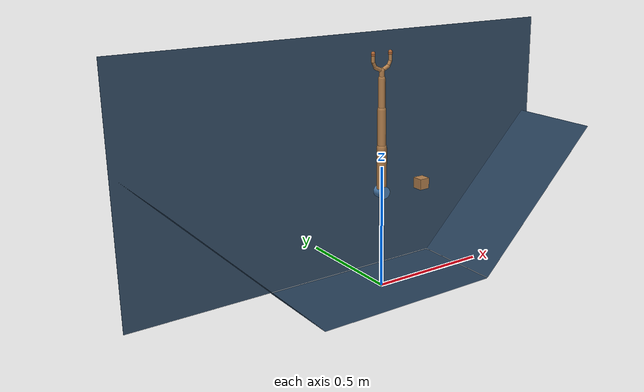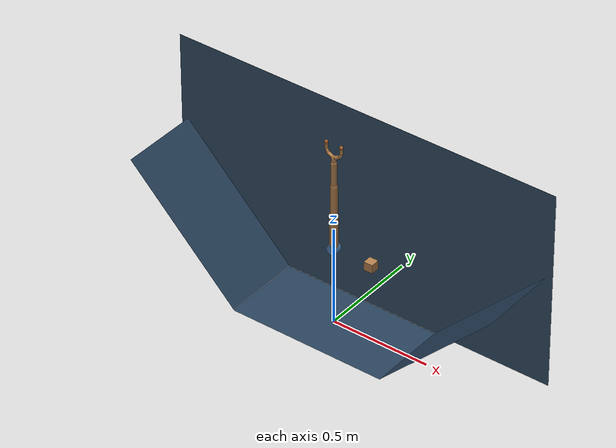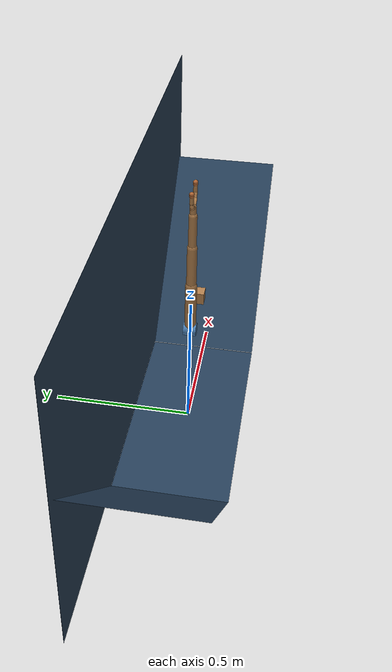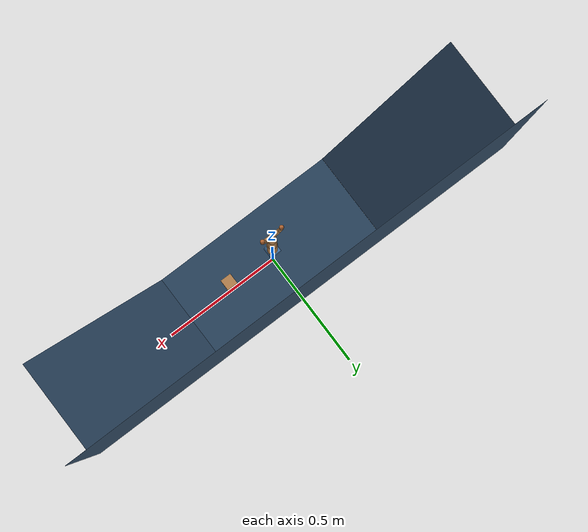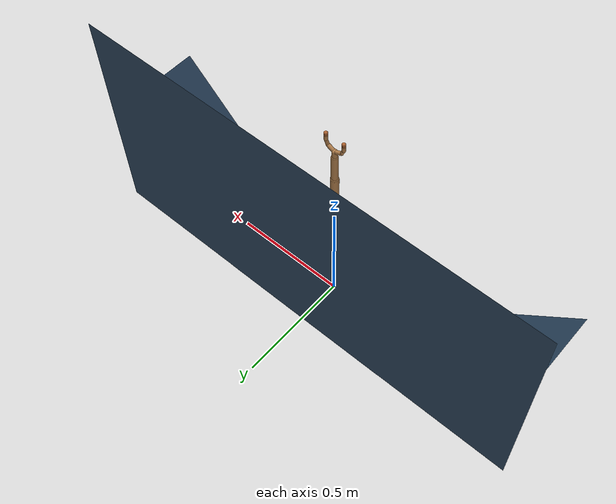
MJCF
<mujoco model="planar stacker">

  <include file="./common/visual.xml"/>
  <include file="./common/skybox.xml"/>
  <include file="./common/materials.xml"/>
  <asset>
    <texture name="background" builtin="flat" type="2d" mark="random" markrgb="1 1 1" width="800" height="800" rgb1=".2 .3 .4"/>
    <material name="background" texture="background" texrepeat="1 1" texuniform="true"/>
  </asset>

  <visual>
    <map shadowclip=".5"/>
    <quality shadowsize="2048"/>
  </visual>>

  <option timestep="0.001" cone="elliptic"/>

  <default>
    <geom friction=".7" solimp="0.9 0.97 0.001" solref=".01 1"/>
    <joint solimplimit="0 0.99 0.01" solreflimit=".005 1"/>
    <general ctrllimited="true"/>
    <tendon width="0.01"/>
    <site size=".003 .003 .003" rgba=".5 .5 .5 .3" group="3"/>

    <default class="arm">
      <geom type="capsule" material="self" density="500"/>
      <joint type="hinge" pos="0 0 0" axis="0 -1 0" limited="true"/>
      <default class="hand">
        <joint damping=".5" range="-10 60"/>
        <geom size=".008"/>
        <site  type="box" size=".018 .005 .005" pos=".022 0 -.002" euler="0 15 0" group="4"/>
        <default class="fingertip">
          <geom type="sphere" size=".008" material="effector"/>
          <joint damping=".01" stiffness=".01" range="-40 20"/>
          <site  size=".012 .005 .008" pos=".003 0 .003" group="4" euler="0 0 0"/>
        </default>
      </default>
    </default>

    <default class="object">
      <geom material="self"/>
    </default>

    <default class="task">
      <site rgba="0 0 0 0"/>
    </default>

    <default class="obstacle">
      <geom material="decoration" friction="0"/>
    </default>

    <default class="ghost">
      <geom material="target" contype="0" conaffinity="0"/>
    </default>
  </default>

  <worldbody>
    <!-- Arena -->
    <light name="light" directional="true" diffuse=".6 .6 .6" pos="0 0 1" specular=".3 .3 .3"/>
    <geom name="floor" type="plane" pos="0 0 0" size=".4 .2 10" material="grid"/>
    <geom name="wall1" type="plane" pos="-.682843 0 .282843" size=".4 .2 10" material="grid" zaxis="1 0 1"/>
    <geom name="wall2" type="plane" pos=".682843 0 .282843" size=".4 .2 10" material="grid" zaxis="-1 0 1"/>
    <geom name="background" type="plane" pos="0 .2 .5" size="1 .5 10" material="background" zaxis="0 -1 0"/>
    <camera name="fixed" pos="0 -16 .4" xyaxes="1 0 0 0 0 1" fovy="4"/>

    <!-- Arm -->
    <geom name="arm_root" type="cylinder" fromto="0 -.022 .4 0 .022 .4" size=".024"
          material="decoration" contype="0" conaffinity="0"/>
    <body name="upper_arm" pos="0 0 .4" childclass="arm">
      <joint name="arm_root" damping="2" limited="false"/>
      <geom  name="upper_arm"  size=".02" fromto="0 0 0 0 0 .18"/>
      <body  name="middle_arm" pos="0 0 .18" childclass="arm">
        <joint name="arm_shoulder" damping="1.5" range="-160 160"/>
        <geom  name="middle_arm"  size=".017" fromto="0 0 0 0 0 .15"/>
        <body  name="lower_arm" pos="0 0 .15">
          <joint name="arm_elbow" damping="1" range="-160 160"/>
          <geom  name="lower_arm" size=".014" fromto="0 0 0 0 0 .12"/>
          <body  name="hand" pos="0 0 .12">
            <joint name="arm_wrist" damping=".5" range="-140 140" />
            <geom  name="hand" size=".011" fromto="0 0 0 0 0 .03"/>
            <geom  name="palm1"  fromto="0 0 .03  .03 0 .045" class="hand"/>
            <geom  name="palm2"  fromto="0 0 .03 -.03 0 .045" class="hand"/>
            <site  name="grasp" pos="0 0 .065"/>
            <body  name="pinch site" pos="0 0 .090">
              <site  name="pinch"/>
              <inertial pos="0 0 0" mass="1e-6" diaginertia="1e-12 1e-12 1e-12"/>
              <camera name="hand" pos="0 -.3 0" xyaxes="1 0 0 0 0 1" mode="track"/>
            </body>
            <site  name="palm_touch" type="box" group="4" size=".025 .005 .008" pos="0 0 .043"/>

            <body name="thumb" pos=".03 0 .045" euler="0 -90 0" childclass="hand">
              <joint name="thumb"/>
              <geom  name="thumb1"  fromto="0 0 0 .02 0 -.01" size=".007"/>
              <geom  name="thumb2"  fromto=".02 0 -.01 .04 0 -.01" size=".007"/>
              <site  name="thumb_touch" group="4"/>
              <body  name="thumbtip" pos=".05 0 -.01" childclass="fingertip">
                <joint name="thumbtip"/>
                <geom  name="thumbtip1" pos="-.003 0 0" />
                <geom  name="thumbtip2" pos=".003 0 0" />
                <site  name="thumbtip_touch" group="4"/>
              </body>
            </body>

            <body name="finger" pos="-.03 0 .045" euler="0 90 180" childclass="hand">
              <joint name="finger"/>
              <geom  name="finger1"  fromto="0 0 0 .02 0 -.01" size=".007" />
              <geom  name="finger2"  fromto=".02 0 -.01 .04 0 -.01" size=".007"/>
              <site  name="finger_touch"/>
              <body  name="fingertip" pos=".05 0 -.01" childclass="fingertip">
                <joint name="fingertip"/>
                <geom  name="fingertip1" pos="-.003 0 0" />
                <geom  name="fingertip2" pos=".003 0 0" />
                <site  name="fingertip_touch"/>
              </body>
            </body>
          </body>
        </body>
      </body>
    </body>

    <!-- props -->

    <body name="box3" pos=".2 0 .4" childclass="object">
      <joint name="box3_x" type="slide" axis="1 0 0" ref=".2"/>
      <joint name="box3_z" type="slide" axis="0 0 1" ref=".4"/>
      <joint name="box3_y" type="hinge" axis="0 1 0"/>
      <geom  name="box3" type="box" size=".022 .022 .022" />
      <site  name="box3" type="sphere"/>
    </body>

    <!-- targets -->

  </worldbody>

</mujoco>

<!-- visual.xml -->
<mujoco>
    <visual>
        <headlight ambient=".4 .4 .4" diffuse=".8 .8 .8" specular="0.1 0.1 0.1"/>
        <map znear=".01"/>
        <quality shadowsize="2048"/>
    </visual>
</mujoco>

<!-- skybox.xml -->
<mujoco>
    <asset>
        <texture name="skybox" type="skybox" builtin="gradient" rgb1=".4 .6 .8" rgb2="0 0 0"
                 width="800" height="800" mark="random" markrgb="1 1 1"/>
    </asset>
</mujoco>

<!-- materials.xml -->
<!--
Common textures, colors and materials to be used throughout this suite. Some
materials such as xxx_highlight are activated on occurence of certain events,
for example receiving a positive reward.
-->
<mujoco>
    <asset>
        <texture name="grid" type="2d" builtin="checker" rgb1=".1 .2 .3" rgb2=".2 .3 .4" width="300" height="300" mark="edge" markrgb=".2 .3 .4"/>
        <material name="grid" texture="grid" texrepeat="1 1" texuniform="true" reflectance=".2"/>
        <material name="self" rgba=".7 .5 .3 1"/>
        <material name="self_default" rgba=".7 .5 .3 1"/>
        <material name="self_highlight" rgba="0 .5 .3 1"/>
        <material name="effector" rgba=".7 .4 .2 1"/>
        <material name="effector_default" rgba=".7 .4 .2 1"/>
        <material name="effector_highlight" rgba="0 .5 .3 1"/>
        <material name="decoration" rgba=".3 .5 .7 1"/>
        <material name="eye" rgba="0 .2 1 1"/>
        <material name="target" rgba=".6 .3 .3 1"/>
        <material name="target_default" rgba=".6 .3 .3 1"/>
        <material name="target_highlight" rgba=".6 .3 .3 .4"/>
        <material name="site" rgba=".5 .5 .5 .3"/>
    </asset>
</mujoco>
